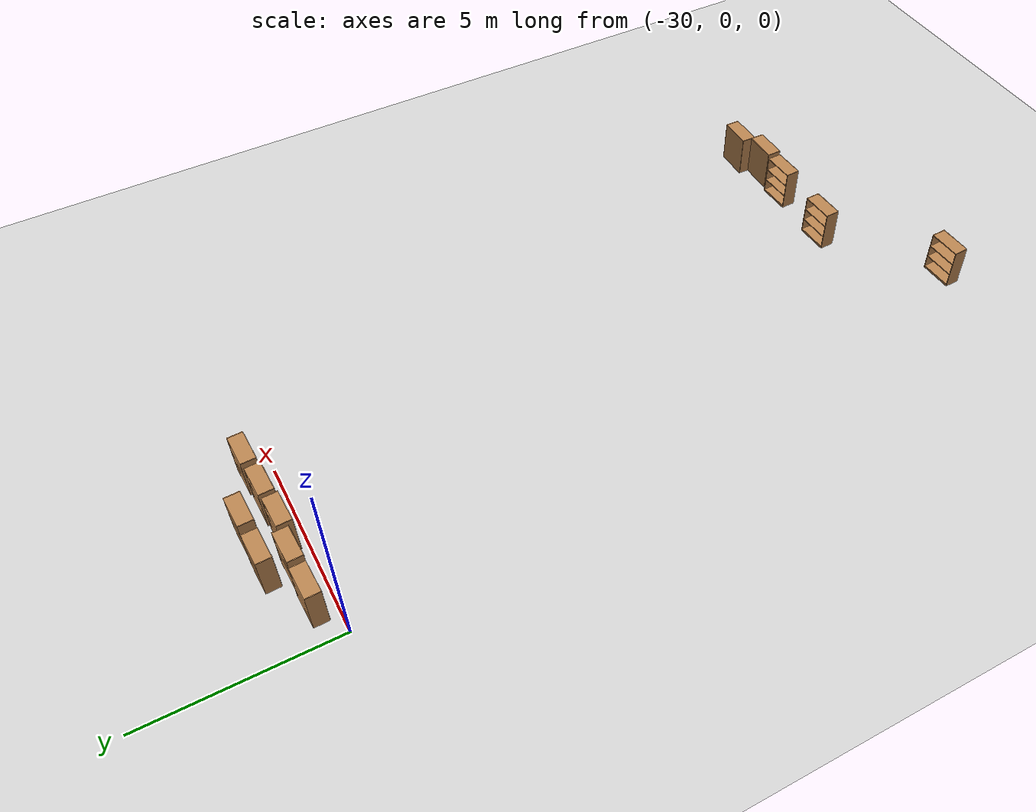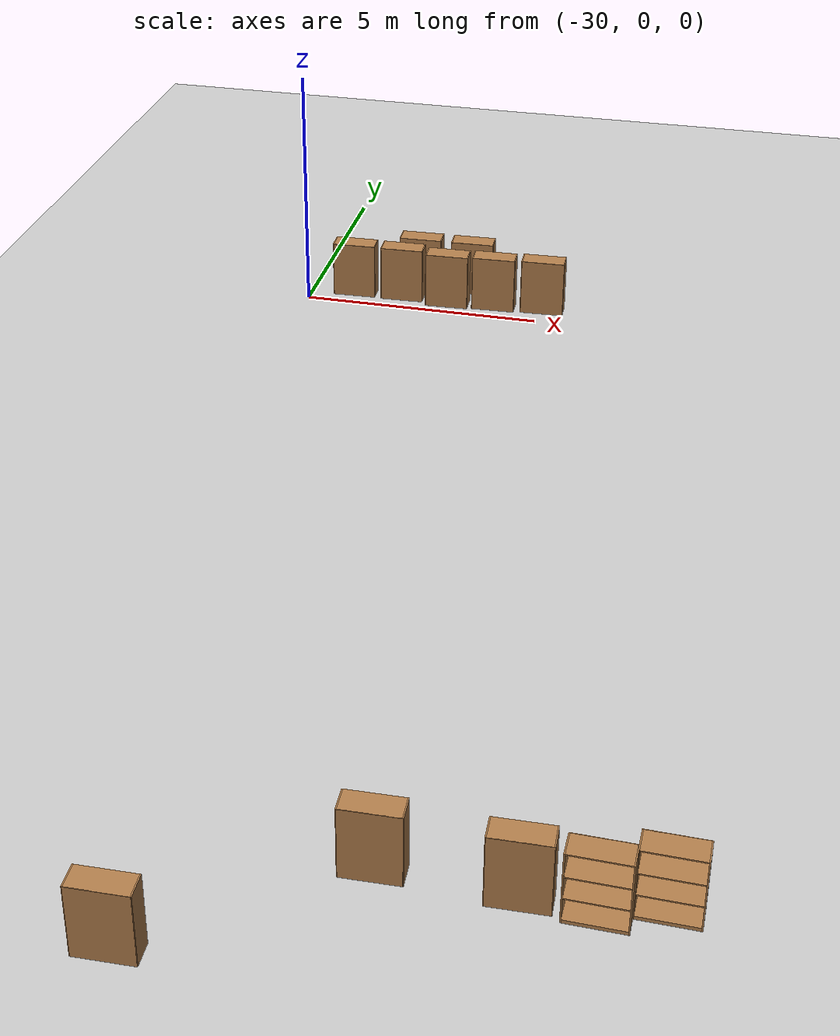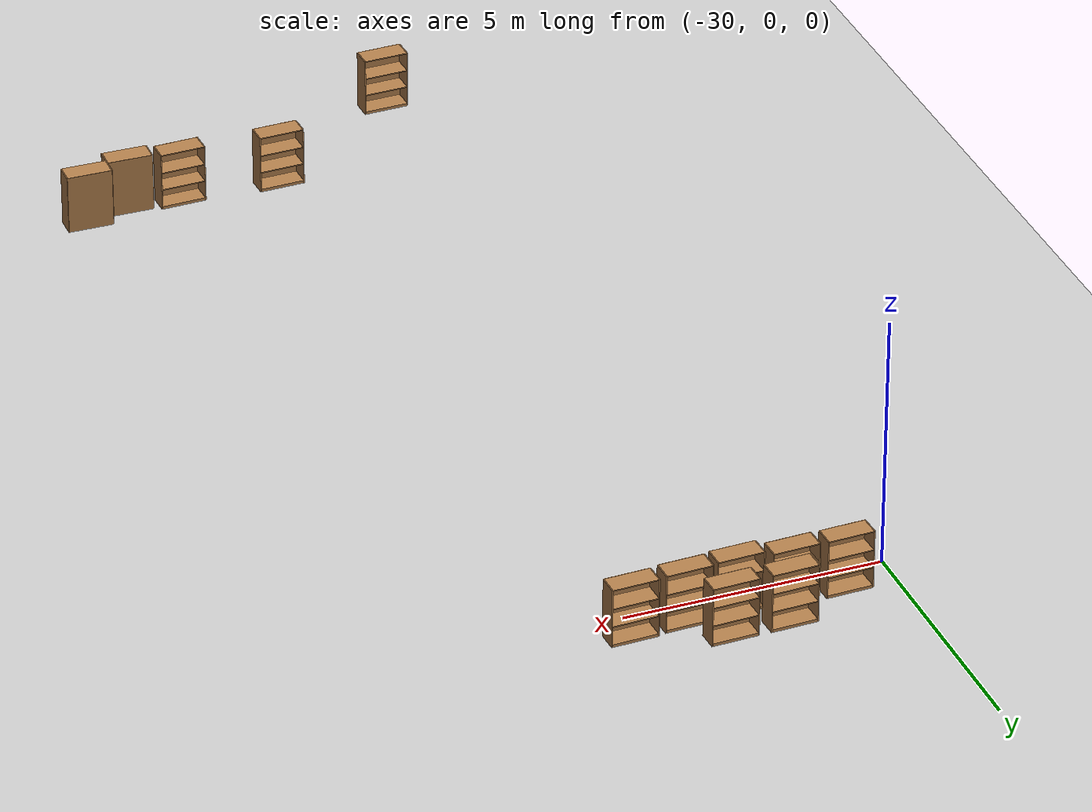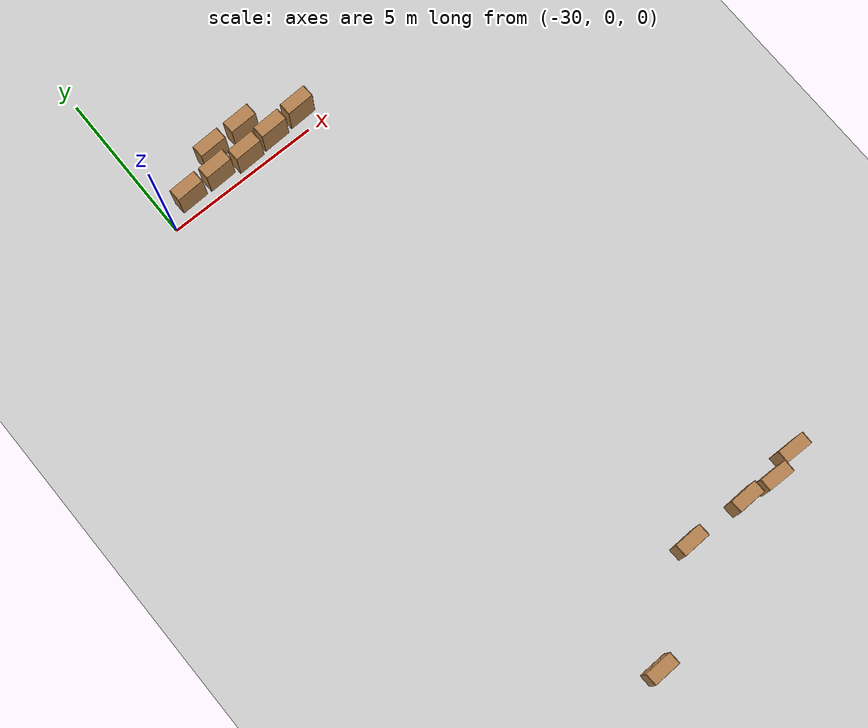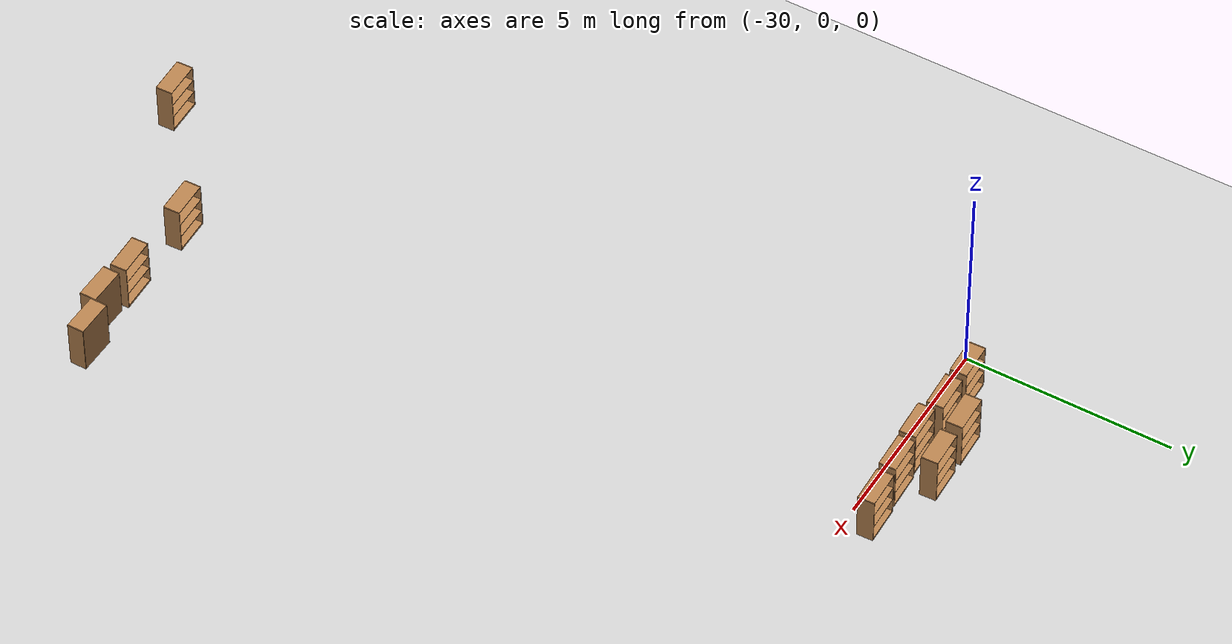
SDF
<sdf version="1.6">
 <world name="default">
  <model name="ground_plane">
   <static>1</static>
   <link name="link">
    <collision name="collision">
     <geometry><plane><normal>0 0 1</normal><size>100 100</size></plane></geometry>
     <surface>
      <contact><collide_bitmask>65535</collide_bitmask></contact>
      <friction><ode><mu>100</mu><mu2>50</mu2></ode></friction>
     </surface>
    </collision>
    <visual name="visual">
     <cast_shadows>0</cast_shadows>
     <geometry><plane><normal>0 0 1</normal><size>100 100</size></plane></geometry>
     <material>
      <script><uri>file://media/materials/scripts/gazebo.material</uri><name>Gazebo/Grey</name></script>
     </material>
    </visual>
   </link>
  </model>
  <model name="bookshelf_clone_2_clone_clone_0_clone_clone_12">
   <static>1</static>
   <link name="link">
    <inertial><mass>1</mass></inertial>
    <collision name="back">
     <pose>0 0.005 0.6 0 -0 0</pose>
     <geometry><box><size>0.9 0.01 1.2</size></box></geometry>
    </collision>
    <visual name="visual1">
     <pose>0 0.005 0.6 0 -0 0</pose>
     <geometry><box><size>0.9 0.01 1.2</size></box></geometry>
     <material>
      <script><uri>file://media/materials/scripts/gazebo.material</uri><name>Gazebo/Wood</name></script>
     </material>
    </visual>
    <collision name="left_side">
     <pose>0.45 -0.195 0.6 0 -0 0</pose>
     <geometry><box><size>0.02 0.4 1.2</size></box></geometry>
    </collision>
    <visual name="visual2">
     <pose>0.45 -0.195 0.6 0 -0 0</pose>
     <geometry><box><size>0.02 0.4 1.2</size></box></geometry>
     <material>
      <script><uri>file://media/materials/scripts/gazebo.material</uri><name>Gazebo/Wood</name></script>
     </material>
    </visual>
    <collision name="right_side">
     <pose>-0.45 -0.195 0.6 0 -0 0</pose>
     <geometry><box><size>0.02 0.4 1.2</size></box></geometry>
    </collision>
    <visual name="visual3">
     <pose>-0.45 -0.195 0.6 0 -0 0</pose>
     <geometry><box><size>0.02 0.4 1.2</size></box></geometry>
     <material>
      <script><uri>file://media/materials/scripts/gazebo.material</uri><name>Gazebo/Wood</name></script>
     </material>
    </visual>
    <collision name="bottom">
     <pose>0 -0.195 0.03 0 -0 0</pose>
     <geometry><box><size>0.88 0.4 0.06</size></box></geometry>
    </collision>
    <visual name="visual4">
     <pose>0 -0.195 0.03 0 -0 0</pose>
     <geometry><box><size>0.88 0.4 0.06</size></box></geometry>
     <material>
      <script><uri>file://media/materials/scripts/gazebo.material</uri><name>Gazebo/Wood</name></script>
     </material>
    </visual>
    <collision name="top">
     <pose>0 -0.195 1.19 0 -0 0</pose>
     <geometry><box><size>0.88 0.4 0.02</size></box></geometry>
    </collision>
    <visual name="visual5">
     <pose>0 -0.195 1.19 0 -0 0</pose>
     <geometry><box><size>0.88 0.4 0.02</size></box></geometry>
     <material>
      <script><uri>file://media/materials/scripts/gazebo.material</uri><name>Gazebo/Wood</name></script>
     </material>
    </visual>
    <collision name="low_shelf">
     <pose>0 -0.195 0.43 0 -0 0</pose>
     <geometry><box><size>0.88 0.4 0.02</size></box></geometry>
    </collision>
    <visual name="visual6">
     <pose>0 -0.195 0.43 0 -0 0</pose>
     <geometry><box><size>0.88 0.4 0.02</size></box></geometry>
     <material>
      <script><uri>file://media/materials/scripts/gazebo.material</uri><name>Gazebo/Wood</name></script>
     </material>
    </visual>
    <collision name="high_shelf">
     <pose>0 -0.195 0.8 0 -0 0</pose>
     <geometry><box><size>0.88 0.4 0.02</size></box></geometry>
    </collision>
    <visual name="visual7">
     <pose>0 -0.195 0.8 0 -0 0</pose>
     <geometry><box><size>0.88 0.4 0.02</size></box></geometry>
     <material>
      <script><uri>file://media/materials/scripts/gazebo.material</uri><name>Gazebo/Wood</name></script>
     </material>
    </visual>
   </link>
   <pose>-26.5702 0.97474 0 0 0 -3.10717</pose>
  </model>
  <model name="bookshelf_clone_2_clone_clone_0_clone_clone_13">
   <static>1</static>
   <link name="link">
    <inertial><mass>1</mass></inertial>
    <collision name="back">
     <pose>0 0.005 0.6 0 -0 0</pose>
     <geometry><box><size>0.9 0.01 1.2</size></box></geometry>
    </collision>
    <visual name="visual1">
     <pose>0 0.005 0.6 0 -0 0</pose>
     <geometry><box><size>0.9 0.01 1.2</size></box></geometry>
     <material>
      <script><uri>file://media/materials/scripts/gazebo.material</uri><name>Gazebo/Wood</name></script>
     </material>
    </visual>
    <collision name="left_side">
     <pose>0.45 -0.195 0.6 0 -0 0</pose>
     <geometry><box><size>0.02 0.4 1.2</size></box></geometry>
    </collision>
    <visual name="visual2">
     <pose>0.45 -0.195 0.6 0 -0 0</pose>
     <geometry><box><size>0.02 0.4 1.2</size></box></geometry>
     <material>
      <script><uri>file://media/materials/scripts/gazebo.material</uri><name>Gazebo/Wood</name></script>
     </material>
    </visual>
    <collision name="right_side">
     <pose>-0.45 -0.195 0.6 0 -0 0</pose>
     <geometry><box><size>0.02 0.4 1.2</size></box></geometry>
    </collision>
    <visual name="visual3">
     <pose>-0.45 -0.195 0.6 0 -0 0</pose>
     <geometry><box><size>0.02 0.4 1.2</size></box></geometry>
     <material>
      <script><uri>file://media/materials/scripts/gazebo.material</uri><name>Gazebo/Wood</name></script>
     </material>
    </visual>
    <collision name="bottom">
     <pose>0 -0.195 0.03 0 -0 0</pose>
     <geometry><box><size>0.88 0.4 0.06</size></box></geometry>
    </collision>
    <visual name="visual4">
     <pose>0 -0.195 0.03 0 -0 0</pose>
     <geometry><box><size>0.88 0.4 0.06</size></box></geometry>
     <material>
      <script><uri>file://media/materials/scripts/gazebo.material</uri><name>Gazebo/Wood</name></script>
     </material>
    </visual>
    <collision name="top">
     <pose>0 -0.195 1.19 0 -0 0</pose>
     <geometry><box><size>0.88 0.4 0.02</size></box></geometry>
    </collision>
    <visual name="visual5">
     <pose>0 -0.195 1.19 0 -0 0</pose>
     <geometry><box><size>0.88 0.4 0.02</size></box></geometry>
     <material>
      <script><uri>file://media/materials/scripts/gazebo.material</uri><name>Gazebo/Wood</name></script>
     </material>
    </visual>
    <collision name="low_shelf">
     <pose>0 -0.195 0.43 0 -0 0</pose>
     <geometry><box><size>0.88 0.4 0.02</size></box></geometry>
    </collision>
    <visual name="visual6">
     <pose>0 -0.195 0.43 0 -0 0</pose>
     <geometry><box><size>0.88 0.4 0.02</size></box></geometry>
     <material>
      <script><uri>file://media/materials/scripts/gazebo.material</uri><name>Gazebo/Wood</name></script>
     </material>
    </visual>
    <collision name="high_shelf">
     <pose>0 -0.195 0.8 0 -0 0</pose>
     <geometry><box><size>0.88 0.4 0.02</size></box></geometry>
    </collision>
    <visual name="visual7">
     <pose>0 -0.195 0.8 0 -0 0</pose>
     <geometry><box><size>0.88 0.4 0.02</size></box></geometry>
     <material>
      <script><uri>file://media/materials/scripts/gazebo.material</uri><name>Gazebo/Wood</name></script>
     </material>
    </visual>
   </link>
   <pose>-27.7151 0.947117 0 0 0 -3.10717</pose>
  </model>
  <model name="bookshelf_clone_2_clone_clone_0_clone_clone_14">
   <static>1</static>
   <link name="link">
    <inertial><mass>1</mass></inertial>
    <collision name="back">
     <pose>0 0.005 0.6 0 -0 0</pose>
     <geometry><box><size>0.9 0.01 1.2</size></box></geometry>
    </collision>
    <visual name="visual1">
     <pose>0 0.005 0.6 0 -0 0</pose>
     <geometry><box><size>0.9 0.01 1.2</size></box></geometry>
     <material>
      <script><uri>file://media/materials/scripts/gazebo.material</uri><name>Gazebo/Wood</name></script>
     </material>
    </visual>
    <collision name="left_side">
     <pose>0.45 -0.195 0.6 0 -0 0</pose>
     <geometry><box><size>0.02 0.4 1.2</size></box></geometry>
    </collision>
    <visual name="visual2">
     <pose>0.45 -0.195 0.6 0 -0 0</pose>
     <geometry><box><size>0.02 0.4 1.2</size></box></geometry>
     <material>
      <script><uri>file://media/materials/scripts/gazebo.material</uri><name>Gazebo/Wood</name></script>
     </material>
    </visual>
    <collision name="right_side">
     <pose>-0.45 -0.195 0.6 0 -0 0</pose>
     <geometry><box><size>0.02 0.4 1.2</size></box></geometry>
    </collision>
    <visual name="visual3">
     <pose>-0.45 -0.195 0.6 0 -0 0</pose>
     <geometry><box><size>0.02 0.4 1.2</size></box></geometry>
     <material>
      <script><uri>file://media/materials/scripts/gazebo.material</uri><name>Gazebo/Wood</name></script>
     </material>
    </visual>
    <collision name="bottom">
     <pose>0 -0.195 0.03 0 -0 0</pose>
     <geometry><box><size>0.88 0.4 0.06</size></box></geometry>
    </collision>
    <visual name="visual4">
     <pose>0 -0.195 0.03 0 -0 0</pose>
     <geometry><box><size>0.88 0.4 0.06</size></box></geometry>
     <material>
      <script><uri>file://media/materials/scripts/gazebo.material</uri><name>Gazebo/Wood</name></script>
     </material>
    </visual>
    <collision name="top">
     <pose>0 -0.195 1.19 0 -0 0</pose>
     <geometry><box><size>0.88 0.4 0.02</size></box></geometry>
    </collision>
    <visual name="visual5">
     <pose>0 -0.195 1.19 0 -0 0</pose>
     <geometry><box><size>0.88 0.4 0.02</size></box></geometry>
     <material>
      <script><uri>file://media/materials/scripts/gazebo.material</uri><name>Gazebo/Wood</name></script>
     </material>
    </visual>
    <collision name="low_shelf">
     <pose>0 -0.195 0.43 0 -0 0</pose>
     <geometry><box><size>0.88 0.4 0.02</size></box></geometry>
    </collision>
    <visual name="visual6">
     <pose>0 -0.195 0.43 0 -0 0</pose>
     <geometry><box><size>0.88 0.4 0.02</size></box></geometry>
     <material>
      <script><uri>file://media/materials/scripts/gazebo.material</uri><name>Gazebo/Wood</name></script>
     </material>
    </visual>
    <collision name="high_shelf">
     <pose>0 -0.195 0.8 0 -0 0</pose>
     <geometry><box><size>0.88 0.4 0.02</size></box></geometry>
    </collision>
    <visual name="visual7">
     <pose>0 -0.195 0.8 0 -0 0</pose>
     <geometry><box><size>0.88 0.4 0.02</size></box></geometry>
     <material>
      <script><uri>file://media/materials/scripts/gazebo.material</uri><name>Gazebo/Wood</name></script>
     </material>
    </visual>
   </link>
   <pose>-26.9793 0.217777 0 0 0 -3.10717</pose>
  </model>
  <model name="bookshelf_clone_2_clone_clone_0_clone_clone_15">
   <static>1</static>
   <link name="link">
    <inertial><mass>1</mass></inertial>
    <collision name="back">
     <pose>0 0.005 0.6 0 -0 0</pose>
     <geometry><box><size>0.9 0.01 1.2</size></box></geometry>
    </collision>
    <visual name="visual1">
     <pose>0 0.005 0.6 0 -0 0</pose>
     <geometry><box><size>0.9 0.01 1.2</size></box></geometry>
     <material>
      <script><uri>file://media/materials/scripts/gazebo.material</uri><name>Gazebo/Wood</name></script>
     </material>
    </visual>
    <collision name="left_side">
     <pose>0.45 -0.195 0.6 0 -0 0</pose>
     <geometry><box><size>0.02 0.4 1.2</size></box></geometry>
    </collision>
    <visual name="visual2">
     <pose>0.45 -0.195 0.6 0 -0 0</pose>
     <geometry><box><size>0.02 0.4 1.2</size></box></geometry>
     <material>
      <script><uri>file://media/materials/scripts/gazebo.material</uri><name>Gazebo/Wood</name></script>
     </material>
    </visual>
    <collision name="right_side">
     <pose>-0.45 -0.195 0.6 0 -0 0</pose>
     <geometry><box><size>0.02 0.4 1.2</size></box></geometry>
    </collision>
    <visual name="visual3">
     <pose>-0.45 -0.195 0.6 0 -0 0</pose>
     <geometry><box><size>0.02 0.4 1.2</size></box></geometry>
     <material>
      <script><uri>file://media/materials/scripts/gazebo.material</uri><name>Gazebo/Wood</name></script>
     </material>
    </visual>
    <collision name="bottom">
     <pose>0 -0.195 0.03 0 -0 0</pose>
     <geometry><box><size>0.88 0.4 0.06</size></box></geometry>
    </collision>
    <visual name="visual4">
     <pose>0 -0.195 0.03 0 -0 0</pose>
     <geometry><box><size>0.88 0.4 0.06</size></box></geometry>
     <material>
      <script><uri>file://media/materials/scripts/gazebo.material</uri><name>Gazebo/Wood</name></script>
     </material>
    </visual>
    <collision name="top">
     <pose>0 -0.195 1.19 0 -0 0</pose>
     <geometry><box><size>0.88 0.4 0.02</size></box></geometry>
    </collision>
    <visual name="visual5">
     <pose>0 -0.195 1.19 0 -0 0</pose>
     <geometry><box><size>0.88 0.4 0.02</size></box></geometry>
     <material>
      <script><uri>file://media/materials/scripts/gazebo.material</uri><name>Gazebo/Wood</name></script>
     </material>
    </visual>
    <collision name="low_shelf">
     <pose>0 -0.195 0.43 0 -0 0</pose>
     <geometry><box><size>0.88 0.4 0.02</size></box></geometry>
    </collision>
    <visual name="visual6">
     <pose>0 -0.195 0.43 0 -0 0</pose>
     <geometry><box><size>0.88 0.4 0.02</size></box></geometry>
     <material>
      <script><uri>file://media/materials/scripts/gazebo.material</uri><name>Gazebo/Wood</name></script>
     </material>
    </visual>
    <collision name="high_shelf">
     <pose>0 -0.195 0.8 0 -0 0</pose>
     <geometry><box><size>0.88 0.4 0.02</size></box></geometry>
    </collision>
    <visual name="visual7">
     <pose>0 -0.195 0.8 0 -0 0</pose>
     <geometry><box><size>0.88 0.4 0.02</size></box></geometry>
     <material>
      <script><uri>file://media/materials/scripts/gazebo.material</uri><name>Gazebo/Wood</name></script>
     </material>
    </visual>
   </link>
   <pose>-25.9724 0.290514 0 0 0 -3.10717</pose>
  </model>
  <model name="bookshelf_clone_2_clone_clone_0_clone_clone_16">
   <static>1</static>
   <link name="link">
    <inertial><mass>1</mass></inertial>
    <collision name="back">
     <pose>0 0.005 0.6 0 -0 0</pose>
     <geometry><box><size>0.9 0.01 1.2</size></box></geometry>
    </collision>
    <visual name="visual1">
     <pose>0 0.005 0.6 0 -0 0</pose>
     <geometry><box><size>0.9 0.01 1.2</size></box></geometry>
     <material>
      <script><uri>file://media/materials/scripts/gazebo.material</uri><name>Gazebo/Wood</name></script>
     </material>
    </visual>
    <collision name="left_side">
     <pose>0.45 -0.195 0.6 0 -0 0</pose>
     <geometry><box><size>0.02 0.4 1.2</size></box></geometry>
    </collision>
    <visual name="visual2">
     <pose>0.45 -0.195 0.6 0 -0 0</pose>
     <geometry><box><size>0.02 0.4 1.2</size></box></geometry>
     <material>
      <script><uri>file://media/materials/scripts/gazebo.material</uri><name>Gazebo/Wood</name></script>
     </material>
    </visual>
    <collision name="right_side">
     <pose>-0.45 -0.195 0.6 0 -0 0</pose>
     <geometry><box><size>0.02 0.4 1.2</size></box></geometry>
    </collision>
    <visual name="visual3">
     <pose>-0.45 -0.195 0.6 0 -0 0</pose>
     <geometry><box><size>0.02 0.4 1.2</size></box></geometry>
     <material>
      <script><uri>file://media/materials/scripts/gazebo.material</uri><name>Gazebo/Wood</name></script>
     </material>
    </visual>
    <collision name="bottom">
     <pose>0 -0.195 0.03 0 -0 0</pose>
     <geometry><box><size>0.88 0.4 0.06</size></box></geometry>
    </collision>
    <visual name="visual4">
     <pose>0 -0.195 0.03 0 -0 0</pose>
     <geometry><box><size>0.88 0.4 0.06</size></box></geometry>
     <material>
      <script><uri>file://media/materials/scripts/gazebo.material</uri><name>Gazebo/Wood</name></script>
     </material>
    </visual>
    <collision name="top">
     <pose>0 -0.195 1.19 0 -0 0</pose>
     <geometry><box><size>0.88 0.4 0.02</size></box></geometry>
    </collision>
    <visual name="visual5">
     <pose>0 -0.195 1.19 0 -0 0</pose>
     <geometry><box><size>0.88 0.4 0.02</size></box></geometry>
     <material>
      <script><uri>file://media/materials/scripts/gazebo.material</uri><name>Gazebo/Wood</name></script>
     </material>
    </visual>
    <collision name="low_shelf">
     <pose>0 -0.195 0.43 0 -0 0</pose>
     <geometry><box><size>0.88 0.4 0.02</size></box></geometry>
    </collision>
    <visual name="visual6">
     <pose>0 -0.195 0.43 0 -0 0</pose>
     <geometry><box><size>0.88 0.4 0.02</size></box></geometry>
     <material>
      <script><uri>file://media/materials/scripts/gazebo.material</uri><name>Gazebo/Wood</name></script>
     </material>
    </visual>
    <collision name="high_shelf">
     <pose>0 -0.195 0.8 0 -0 0</pose>
     <geometry><box><size>0.88 0.4 0.02</size></box></geometry>
    </collision>
    <visual name="visual7">
     <pose>0 -0.195 0.8 0 -0 0</pose>
     <geometry><box><size>0.88 0.4 0.02</size></box></geometry>
     <material>
      <script><uri>file://media/materials/scripts/gazebo.material</uri><name>Gazebo/Wood</name></script>
     </material>
    </visual>
   </link>
   <pose>-24.9204 0.363565 0 0 0 -3.10717</pose>
  </model>
  <model name="bookshelf_clone_2_clone_clone_0_clone_clone_16_clone">
   <static>1</static>
   <link name="link">
    <inertial><mass>1</mass></inertial>
    <collision name="back">
     <pose>0 0.005 0.6 0 -0 0</pose>
     <geometry><box><size>0.9 0.01 1.2</size></box></geometry>
    </collision>
    <visual name="visual1">
     <pose>0 0.005 0.6 0 -0 0</pose>
     <geometry><box><size>0.9 0.01 1.2</size></box></geometry>
     <material>
      <script><uri>file://media/materials/scripts/gazebo.material</uri><name>Gazebo/Wood</name></script>
     </material>
    </visual>
    <collision name="left_side">
     <pose>0.45 -0.195 0.6 0 -0 0</pose>
     <geometry><box><size>0.02 0.4 1.2</size></box></geometry>
    </collision>
    <visual name="visual2">
     <pose>0.45 -0.195 0.6 0 -0 0</pose>
     <geometry><box><size>0.02 0.4 1.2</size></box></geometry>
     <material>
      <script><uri>file://media/materials/scripts/gazebo.material</uri><name>Gazebo/Wood</name></script>
     </material>
    </visual>
    <collision name="right_side">
     <pose>-0.45 -0.195 0.6 0 -0 0</pose>
     <geometry><box><size>0.02 0.4 1.2</size></box></geometry>
    </collision>
    <visual name="visual3">
     <pose>-0.45 -0.195 0.6 0 -0 0</pose>
     <geometry><box><size>0.02 0.4 1.2</size></box></geometry>
     <material>
      <script><uri>file://media/materials/scripts/gazebo.material</uri><name>Gazebo/Wood</name></script>
     </material>
    </visual>
    <collision name="bottom">
     <pose>0 -0.195 0.03 0 -0 0</pose>
     <geometry><box><size>0.88 0.4 0.06</size></box></geometry>
    </collision>
    <visual name="visual4">
     <pose>0 -0.195 0.03 0 -0 0</pose>
     <geometry><box><size>0.88 0.4 0.06</size></box></geometry>
     <material>
      <script><uri>file://media/materials/scripts/gazebo.material</uri><name>Gazebo/Wood</name></script>
     </material>
    </visual>
    <collision name="top">
     <pose>0 -0.195 1.19 0 -0 0</pose>
     <geometry><box><size>0.88 0.4 0.02</size></box></geometry>
    </collision>
    <visual name="visual5">
     <pose>0 -0.195 1.19 0 -0 0</pose>
     <geometry><box><size>0.88 0.4 0.02</size></box></geometry>
     <material>
      <script><uri>file://media/materials/scripts/gazebo.material</uri><name>Gazebo/Wood</name></script>
     </material>
    </visual>
    <collision name="low_shelf">
     <pose>0 -0.195 0.43 0 -0 0</pose>
     <geometry><box><size>0.88 0.4 0.02</size></box></geometry>
    </collision>
    <visual name="visual6">
     <pose>0 -0.195 0.43 0 -0 0</pose>
     <geometry><box><size>0.88 0.4 0.02</size></box></geometry>
     <material>
      <script><uri>file://media/materials/scripts/gazebo.material</uri><name>Gazebo/Wood</name></script>
     </material>
    </visual>
    <collision name="high_shelf">
     <pose>0 -0.195 0.8 0 -0 0</pose>
     <geometry><box><size>0.88 0.4 0.02</size></box></geometry>
    </collision>
    <visual name="visual7">
     <pose>0 -0.195 0.8 0 -0 0</pose>
     <geometry><box><size>0.88 0.4 0.02</size></box></geometry>
     <material>
      <script><uri>file://media/materials/scripts/gazebo.material</uri><name>Gazebo/Wood</name></script>
     </material>
    </visual>
   </link>
   <pose>-27.4115 -18.9126 0 0 0 -3.10717</pose>
  </model>
  <model name="bookshelf_clone_2_clone_clone_0_clone_clone_15_clone">
   <static>1</static>
   <link name="link">
    <inertial><mass>1</mass></inertial>
    <collision name="back">
     <pose>0 0.005 0.6 0 -0 0</pose>
     <geometry><box><size>0.9 0.01 1.2</size></box></geometry>
    </collision>
    <visual name="visual1">
     <pose>0 0.005 0.6 0 -0 0</pose>
     <geometry><box><size>0.9 0.01 1.2</size></box></geometry>
     <material>
      <script><uri>file://media/materials/scripts/gazebo.material</uri><name>Gazebo/Wood</name></script>
     </material>
    </visual>
    <collision name="left_side">
     <pose>0.45 -0.195 0.6 0 -0 0</pose>
     <geometry><box><size>0.02 0.4 1.2</size></box></geometry>
    </collision>
    <visual name="visual2">
     <pose>0.45 -0.195 0.6 0 -0 0</pose>
     <geometry><box><size>0.02 0.4 1.2</size></box></geometry>
     <material>
      <script><uri>file://media/materials/scripts/gazebo.material</uri><name>Gazebo/Wood</name></script>
     </material>
    </visual>
    <collision name="right_side">
     <pose>-0.45 -0.195 0.6 0 -0 0</pose>
     <geometry><box><size>0.02 0.4 1.2</size></box></geometry>
    </collision>
    <visual name="visual3">
     <pose>-0.45 -0.195 0.6 0 -0 0</pose>
     <geometry><box><size>0.02 0.4 1.2</size></box></geometry>
     <material>
      <script><uri>file://media/materials/scripts/gazebo.material</uri><name>Gazebo/Wood</name></script>
     </material>
    </visual>
    <collision name="bottom">
     <pose>0 -0.195 0.03 0 -0 0</pose>
     <geometry><box><size>0.88 0.4 0.06</size></box></geometry>
    </collision>
    <visual name="visual4">
     <pose>0 -0.195 0.03 0 -0 0</pose>
     <geometry><box><size>0.88 0.4 0.06</size></box></geometry>
     <material>
      <script><uri>file://media/materials/scripts/gazebo.material</uri><name>Gazebo/Wood</name></script>
     </material>
    </visual>
    <collision name="top">
     <pose>0 -0.195 1.19 0 -0 0</pose>
     <geometry><box><size>0.88 0.4 0.02</size></box></geometry>
    </collision>
    <visual name="visual5">
     <pose>0 -0.195 1.19 0 -0 0</pose>
     <geometry><box><size>0.88 0.4 0.02</size></box></geometry>
     <material>
      <script><uri>file://media/materials/scripts/gazebo.material</uri><name>Gazebo/Wood</name></script>
     </material>
    </visual>
    <collision name="low_shelf">
     <pose>0 -0.195 0.43 0 -0 0</pose>
     <geometry><box><size>0.88 0.4 0.02</size></box></geometry>
    </collision>
    <visual name="visual6">
     <pose>0 -0.195 0.43 0 -0 0</pose>
     <geometry><box><size>0.88 0.4 0.02</size></box></geometry>
     <material>
      <script><uri>file://media/materials/scripts/gazebo.material</uri><name>Gazebo/Wood</name></script>
     </material>
    </visual>
    <collision name="high_shelf">
     <pose>0 -0.195 0.8 0 -0 0</pose>
     <geometry><box><size>0.88 0.4 0.02</size></box></geometry>
    </collision>
    <visual name="visual7">
     <pose>0 -0.195 0.8 0 -0 0</pose>
     <geometry><box><size>0.88 0.4 0.02</size></box></geometry>
     <material>
      <script><uri>file://media/materials/scripts/gazebo.material</uri><name>Gazebo/Wood</name></script>
     </material>
    </visual>
   </link>
   <pose>-24.4599 -16.7887 0 0 0 -3.10717</pose>
  </model>
  <model name="bookshelf_clone_2_clone_clone_0_clone_clone_15_clone_0">
   <static>1</static>
   <link name="link">
    <inertial><mass>1</mass></inertial>
    <collision name="back">
     <pose>0 0.005 0.6 0 -0 0</pose>
     <geometry><box><size>0.9 0.01 1.2</size></box></geometry>
    </collision>
    <visual name="visual1">
     <pose>0 0.005 0.6 0 -0 0</pose>
     <geometry><box><size>0.9 0.01 1.2</size></box></geometry>
     <material>
      <script><uri>file://media/materials/scripts/gazebo.material</uri><name>Gazebo/Wood</name></script>
     </material>
    </visual>
    <collision name="left_side">
     <pose>0.45 -0.195 0.6 0 -0 0</pose>
     <geometry><box><size>0.02 0.4 1.2</size></box></geometry>
    </collision>
    <visual name="visual2">
     <pose>0.45 -0.195 0.6 0 -0 0</pose>
     <geometry><box><size>0.02 0.4 1.2</size></box></geometry>
     <material>
      <script><uri>file://media/materials/scripts/gazebo.material</uri><name>Gazebo/Wood</name></script>
     </material>
    </visual>
    <collision name="right_side">
     <pose>-0.45 -0.195 0.6 0 -0 0</pose>
     <geometry><box><size>0.02 0.4 1.2</size></box></geometry>
    </collision>
    <visual name="visual3">
     <pose>-0.45 -0.195 0.6 0 -0 0</pose>
     <geometry><box><size>0.02 0.4 1.2</size></box></geometry>
     <material>
      <script><uri>file://media/materials/scripts/gazebo.material</uri><name>Gazebo/Wood</name></script>
     </material>
    </visual>
    <collision name="bottom">
     <pose>0 -0.195 0.03 0 -0 0</pose>
     <geometry><box><size>0.88 0.4 0.06</size></box></geometry>
    </collision>
    <visual name="visual4">
     <pose>0 -0.195 0.03 0 -0 0</pose>
     <geometry><box><size>0.88 0.4 0.06</size></box></geometry>
     <material>
      <script><uri>file://media/materials/scripts/gazebo.material</uri><name>Gazebo/Wood</name></script>
     </material>
    </visual>
    <collision name="top">
     <pose>0 -0.195 1.19 0 -0 0</pose>
     <geometry><box><size>0.88 0.4 0.02</size></box></geometry>
    </collision>
    <visual name="visual5">
     <pose>0 -0.195 1.19 0 -0 0</pose>
     <geometry><box><size>0.88 0.4 0.02</size></box></geometry>
     <material>
      <script><uri>file://media/materials/scripts/gazebo.material</uri><name>Gazebo/Wood</name></script>
     </material>
    </visual>
    <collision name="low_shelf">
     <pose>0 -0.195 0.43 0 -0 0</pose>
     <geometry><box><size>0.88 0.4 0.02</size></box></geometry>
    </collision>
    <visual name="visual6">
     <pose>0 -0.195 0.43 0 -0 0</pose>
     <geometry><box><size>0.88 0.4 0.02</size></box></geometry>
     <material>
      <script><uri>file://media/materials/scripts/gazebo.material</uri><name>Gazebo/Wood</name></script>
     </material>
    </visual>
    <collision name="high_shelf">
     <pose>0 -0.195 0.8 0 -0 0</pose>
     <geometry><box><size>0.88 0.4 0.02</size></box></geometry>
    </collision>
    <visual name="visual7">
     <pose>0 -0.195 0.8 0 -0 0</pose>
     <geometry><box><size>0.88 0.4 0.02</size></box></geometry>
     <material>
      <script><uri>file://media/materials/scripts/gazebo.material</uri><name>Gazebo/Wood</name></script>
     </material>
    </visual>
   </link>
   <pose>-22.4547 -16.854 0 0 0 -3.10717</pose>
  </model>
  <model name="bookshelf_clone_2_clone_clone_0_clone_clone_15_clone_0_clone">
   <static>1</static>
   <link name="link">
    <inertial><mass>1</mass></inertial>
    <collision name="back">
     <pose>0 0.005 0.6 0 -0 0</pose>
     <geometry><box><size>0.9 0.01 1.2</size></box></geometry>
    </collision>
    <visual name="visual1">
     <pose>0 0.005 0.6 0 -0 0</pose>
     <geometry><box><size>0.9 0.01 1.2</size></box></geometry>
     <material>
      <script><uri>file://media/materials/scripts/gazebo.material</uri><name>Gazebo/Wood</name></script>
     </material>
    </visual>
    <collision name="left_side">
     <pose>0.45 -0.195 0.6 0 -0 0</pose>
     <geometry><box><size>0.02 0.4 1.2</size></box></geometry>
    </collision>
    <visual name="visual2">
     <pose>0.45 -0.195 0.6 0 -0 0</pose>
     <geometry><box><size>0.02 0.4 1.2</size></box></geometry>
     <material>
      <script><uri>file://media/materials/scripts/gazebo.material</uri><name>Gazebo/Wood</name></script>
     </material>
    </visual>
    <collision name="right_side">
     <pose>-0.45 -0.195 0.6 0 -0 0</pose>
     <geometry><box><size>0.02 0.4 1.2</size></box></geometry>
    </collision>
    <visual name="visual3">
     <pose>-0.45 -0.195 0.6 0 -0 0</pose>
     <geometry><box><size>0.02 0.4 1.2</size></box></geometry>
     <material>
      <script><uri>file://media/materials/scripts/gazebo.material</uri><name>Gazebo/Wood</name></script>
     </material>
    </visual>
    <collision name="bottom">
     <pose>0 -0.195 0.03 0 -0 0</pose>
     <geometry><box><size>0.88 0.4 0.06</size></box></geometry>
    </collision>
    <visual name="visual4">
     <pose>0 -0.195 0.03 0 -0 0</pose>
     <geometry><box><size>0.88 0.4 0.06</size></box></geometry>
     <material>
      <script><uri>file://media/materials/scripts/gazebo.material</uri><name>Gazebo/Wood</name></script>
     </material>
    </visual>
    <collision name="top">
     <pose>0 -0.195 1.19 0 -0 0</pose>
     <geometry><box><size>0.88 0.4 0.02</size></box></geometry>
    </collision>
    <visual name="visual5">
     <pose>0 -0.195 1.19 0 -0 0</pose>
     <geometry><box><size>0.88 0.4 0.02</size></box></geometry>
     <material>
      <script><uri>file://media/materials/scripts/gazebo.material</uri><name>Gazebo/Wood</name></script>
     </material>
    </visual>
    <collision name="low_shelf">
     <pose>0 -0.195 0.43 0 -0 0</pose>
     <geometry><box><size>0.88 0.4 0.02</size></box></geometry>
    </collision>
    <visual name="visual6">
     <pose>0 -0.195 0.43 0 -0 0</pose>
     <geometry><box><size>0.88 0.4 0.02</size></box></geometry>
     <material>
      <script><uri>file://media/materials/scripts/gazebo.material</uri><name>Gazebo/Wood</name></script>
     </material>
    </visual>
    <collision name="high_shelf">
     <pose>0 -0.195 0.8 0 -0 0</pose>
     <geometry><box><size>0.88 0.4 0.02</size></box></geometry>
    </collision>
    <visual name="visual7">
     <pose>0 -0.195 0.8 0 -0 0</pose>
     <geometry><box><size>0.88 0.4 0.02</size></box></geometry>
     <material>
      <script><uri>file://media/materials/scripts/gazebo.material</uri><name>Gazebo/Wood</name></script>
     </material>
    </visual>
   </link>
   <pose>-21.4219 -16.5473 0 0 0 -0.013446</pose>
  </model>
  <model name="bookshelf_clone_2_clone_clone_0_clone_clone_15_clone_0_clone_clone">
   <static>1</static>
   <link name="link">
    <inertial><mass>1</mass></inertial>
    <collision name="back">
     <pose>0 0.005 0.6 0 -0 0</pose>
     <geometry><box><size>0.9 0.01 1.2</size></box></geometry>
    </collision>
    <visual name="visual1">
     <pose>0 0.005 0.6 0 -0 0</pose>
     <geometry><box><size>0.9 0.01 1.2</size></box></geometry>
     <material>
      <script><uri>file://media/materials/scripts/gazebo.material</uri><name>Gazebo/Wood</name></script>
     </material>
    </visual>
    <collision name="left_side">
     <pose>0.45 -0.195 0.6 0 -0 0</pose>
     <geometry><box><size>0.02 0.4 1.2</size></box></geometry>
    </collision>
    <visual name="visual2">
     <pose>0.45 -0.195 0.6 0 -0 0</pose>
     <geometry><box><size>0.02 0.4 1.2</size></box></geometry>
     <material>
      <script><uri>file://media/materials/scripts/gazebo.material</uri><name>Gazebo/Wood</name></script>
     </material>
    </visual>
    <collision name="right_side">
     <pose>-0.45 -0.195 0.6 0 -0 0</pose>
     <geometry><box><size>0.02 0.4 1.2</size></box></geometry>
    </collision>
    <visual name="visual3">
     <pose>-0.45 -0.195 0.6 0 -0 0</pose>
     <geometry><box><size>0.02 0.4 1.2</size></box></geometry>
     <material>
      <script><uri>file://media/materials/scripts/gazebo.material</uri><name>Gazebo/Wood</name></script>
     </material>
    </visual>
    <collision name="bottom">
     <pose>0 -0.195 0.03 0 -0 0</pose>
     <geometry><box><size>0.88 0.4 0.06</size></box></geometry>
    </collision>
    <visual name="visual4">
     <pose>0 -0.195 0.03 0 -0 0</pose>
     <geometry><box><size>0.88 0.4 0.06</size></box></geometry>
     <material>
      <script><uri>file://media/materials/scripts/gazebo.material</uri><name>Gazebo/Wood</name></script>
     </material>
    </visual>
    <collision name="top">
     <pose>0 -0.195 1.19 0 -0 0</pose>
     <geometry><box><size>0.88 0.4 0.02</size></box></geometry>
    </collision>
    <visual name="visual5">
     <pose>0 -0.195 1.19 0 -0 0</pose>
     <geometry><box><size>0.88 0.4 0.02</size></box></geometry>
     <material>
      <script><uri>file://media/materials/scripts/gazebo.material</uri><name>Gazebo/Wood</name></script>
     </material>
    </visual>
    <collision name="low_shelf">
     <pose>0 -0.195 0.43 0 -0 0</pose>
     <geometry><box><size>0.88 0.4 0.02</size></box></geometry>
    </collision>
    <visual name="visual6">
     <pose>0 -0.195 0.43 0 -0 0</pose>
     <geometry><box><size>0.88 0.4 0.02</size></box></geometry>
     <material>
      <script><uri>file://media/materials/scripts/gazebo.material</uri><name>Gazebo/Wood</name></script>
     </material>
    </visual>
    <collision name="high_shelf">
     <pose>0 -0.195 0.8 0 -0 0</pose>
     <geometry><box><size>0.88 0.4 0.02</size></box></geometry>
    </collision>
    <visual name="visual7">
     <pose>0 -0.195 0.8 0 -0 0</pose>
     <geometry><box><size>0.88 0.4 0.02</size></box></geometry>
     <material>
      <script><uri>file://media/materials/scripts/gazebo.material</uri><name>Gazebo/Wood</name></script>
     </material>
    </visual>
   </link>
   <pose>-20.5085 -16.2652 0 0 0 -0.013446</pose>
  </model>
  <model name="bookshelf_clone_2_clone_clone_0_clone_clone_14_clone">
   <static>1</static>
   <link name="link">
    <inertial><mass>1</mass></inertial>
    <collision name="back">
     <pose>0 0.005 0.6 0 -0 0</pose>
     <geometry><box><size>0.9 0.01 1.2</size></box></geometry>
    </collision>
    <visual name="visual1">
     <pose>0 0.005 0.6 0 -0 0</pose>
     <geometry><box><size>0.9 0.01 1.2</size></box></geometry>
     <material>
      <script><uri>file://media/materials/scripts/gazebo.material</uri><name>Gazebo/Wood</name></script>
     </material>
    </visual>
    <collision name="left_side">
     <pose>0.45 -0.195 0.6 0 -0 0</pose>
     <geometry><box><size>0.02 0.4 1.2</size></box></geometry>
    </collision>
    <visual name="visual2">
     <pose>0.45 -0.195 0.6 0 -0 0</pose>
     <geometry><box><size>0.02 0.4 1.2</size></box></geometry>
     <material>
      <script><uri>file://media/materials/scripts/gazebo.material</uri><name>Gazebo/Wood</name></script>
     </material>
    </visual>
    <collision name="right_side">
     <pose>-0.45 -0.195 0.6 0 -0 0</pose>
     <geometry><box><size>0.02 0.4 1.2</size></box></geometry>
    </collision>
    <visual name="visual3">
     <pose>-0.45 -0.195 0.6 0 -0 0</pose>
     <geometry><box><size>0.02 0.4 1.2</size></box></geometry>
     <material>
      <script><uri>file://media/materials/scripts/gazebo.material</uri><name>Gazebo/Wood</name></script>
     </material>
    </visual>
    <collision name="bottom">
     <pose>0 -0.195 0.03 0 -0 0</pose>
     <geometry><box><size>0.88 0.4 0.06</size></box></geometry>
    </collision>
    <visual name="visual4">
     <pose>0 -0.195 0.03 0 -0 0</pose>
     <geometry><box><size>0.88 0.4 0.06</size></box></geometry>
     <material>
      <script><uri>file://media/materials/scripts/gazebo.material</uri><name>Gazebo/Wood</name></script>
     </material>
    </visual>
    <collision name="top">
     <pose>0 -0.195 1.19 0 -0 0</pose>
     <geometry><box><size>0.88 0.4 0.02</size></box></geometry>
    </collision>
    <visual name="visual5">
     <pose>0 -0.195 1.19 0 -0 0</pose>
     <geometry><box><size>0.88 0.4 0.02</size></box></geometry>
     <material>
      <script><uri>file://media/materials/scripts/gazebo.material</uri><name>Gazebo/Wood</name></script>
     </material>
    </visual>
    <collision name="low_shelf">
     <pose>0 -0.195 0.43 0 -0 0</pose>
     <geometry><box><size>0.88 0.4 0.02</size></box></geometry>
    </collision>
    <visual name="visual6">
     <pose>0 -0.195 0.43 0 -0 0</pose>
     <geometry><box><size>0.88 0.4 0.02</size></box></geometry>
     <material>
      <script><uri>file://media/materials/scripts/gazebo.material</uri><name>Gazebo/Wood</name></script>
     </material>
    </visual>
    <collision name="high_shelf">
     <pose>0 -0.195 0.8 0 -0 0</pose>
     <geometry><box><size>0.88 0.4 0.02</size></box></geometry>
    </collision>
    <visual name="visual7">
     <pose>0 -0.195 0.8 0 -0 0</pose>
     <geometry><box><size>0.88 0.4 0.02</size></box></geometry>
     <material>
      <script><uri>file://media/materials/scripts/gazebo.material</uri><name>Gazebo/Wood</name></script>
     </material>
    </visual>
   </link>
   <pose>-27.9956 0.324058 0 0 0 -3.10717</pose>
  </model>
  <model name="bookshelf_clone_2_clone_clone_0_clone_clone_14_clone_0">
   <static>1</static>
   <link name="link">
    <inertial><mass>1</mass></inertial>
    <collision name="back">
     <pose>0 0.005 0.6 0 -0 0</pose>
     <geometry><box><size>0.9 0.01 1.2</size></box></geometry>
    </collision>
    <visual name="visual1">
     <pose>0 0.005 0.6 0 -0 0</pose>
     <geometry><box><size>0.9 0.01 1.2</size></box></geometry>
     <material>
      <script><uri>file://media/materials/scripts/gazebo.material</uri><name>Gazebo/Wood</name></script>
     </material>
    </visual>
    <collision name="left_side">
     <pose>0.45 -0.195 0.6 0 -0 0</pose>
     <geometry><box><size>0.02 0.4 1.2</size></box></geometry>
    </collision>
    <visual name="visual2">
     <pose>0.45 -0.195 0.6 0 -0 0</pose>
     <geometry><box><size>0.02 0.4 1.2</size></box></geometry>
     <material>
      <script><uri>file://media/materials/scripts/gazebo.material</uri><name>Gazebo/Wood</name></script>
     </material>
    </visual>
    <collision name="right_side">
     <pose>-0.45 -0.195 0.6 0 -0 0</pose>
     <geometry><box><size>0.02 0.4 1.2</size></box></geometry>
    </collision>
    <visual name="visual3">
     <pose>-0.45 -0.195 0.6 0 -0 0</pose>
     <geometry><box><size>0.02 0.4 1.2</size></box></geometry>
     <material>
      <script><uri>file://media/materials/scripts/gazebo.material</uri><name>Gazebo/Wood</name></script>
     </material>
    </visual>
    <collision name="bottom">
     <pose>0 -0.195 0.03 0 -0 0</pose>
     <geometry><box><size>0.88 0.4 0.06</size></box></geometry>
    </collision>
    <visual name="visual4">
     <pose>0 -0.195 0.03 0 -0 0</pose>
     <geometry><box><size>0.88 0.4 0.06</size></box></geometry>
     <material>
      <script><uri>file://media/materials/scripts/gazebo.material</uri><name>Gazebo/Wood</name></script>
     </material>
    </visual>
    <collision name="top">
     <pose>0 -0.195 1.19 0 -0 0</pose>
     <geometry><box><size>0.88 0.4 0.02</size></box></geometry>
    </collision>
    <visual name="visual5">
     <pose>0 -0.195 1.19 0 -0 0</pose>
     <geometry><box><size>0.88 0.4 0.02</size></box></geometry>
     <material>
      <script><uri>file://media/materials/scripts/gazebo.material</uri><name>Gazebo/Wood</name></script>
     </material>
    </visual>
    <collision name="low_shelf">
     <pose>0 -0.195 0.43 0 -0 0</pose>
     <geometry><box><size>0.88 0.4 0.02</size></box></geometry>
    </collision>
    <visual name="visual6">
     <pose>0 -0.195 0.43 0 -0 0</pose>
     <geometry><box><size>0.88 0.4 0.02</size></box></geometry>
     <material>
      <script><uri>file://media/materials/scripts/gazebo.material</uri><name>Gazebo/Wood</name></script>
     </material>
    </visual>
    <collision name="high_shelf">
     <pose>0 -0.195 0.8 0 -0 0</pose>
     <geometry><box><size>0.88 0.4 0.02</size></box></geometry>
    </collision>
    <visual name="visual7">
     <pose>0 -0.195 0.8 0 -0 0</pose>
     <geometry><box><size>0.88 0.4 0.02</size></box></geometry>
     <material>
      <script><uri>file://media/materials/scripts/gazebo.material</uri><name>Gazebo/Wood</name></script>
     </material>
    </visual>
   </link>
   <pose>-29.0517 0.310764 0 0 0 -3.10717</pose>
  </model>
 </world>
</sdf>
